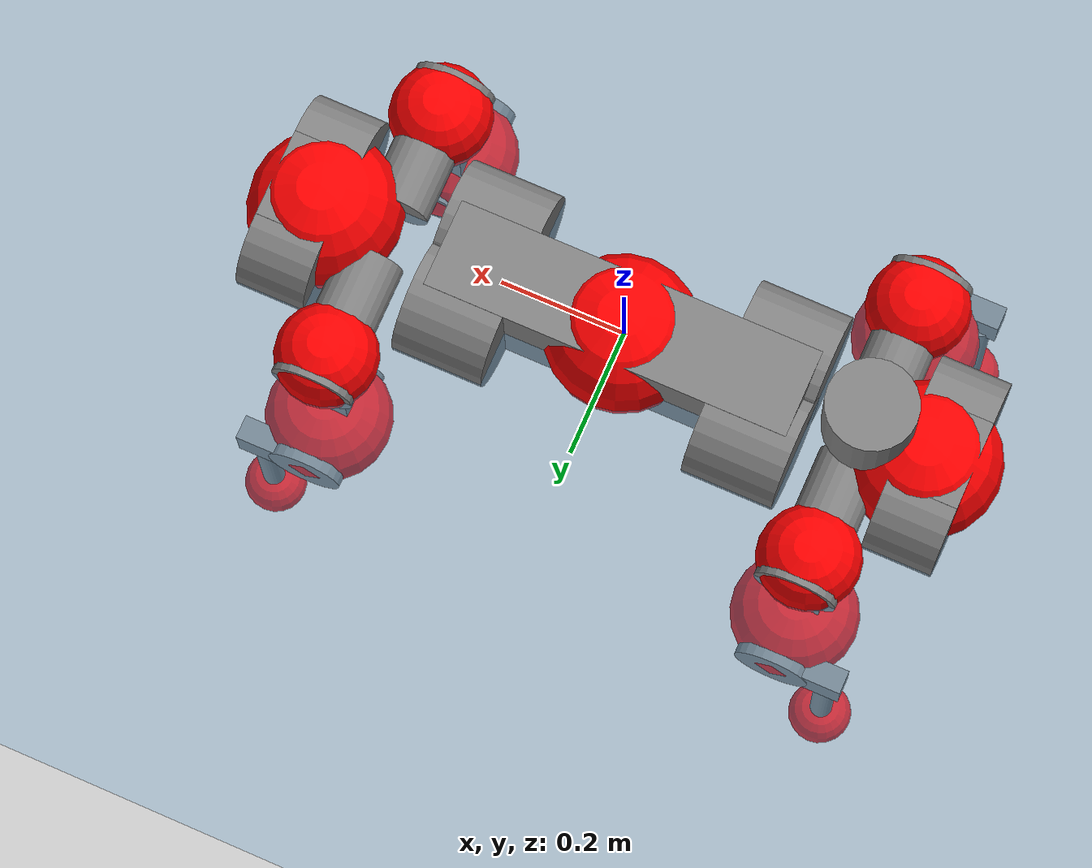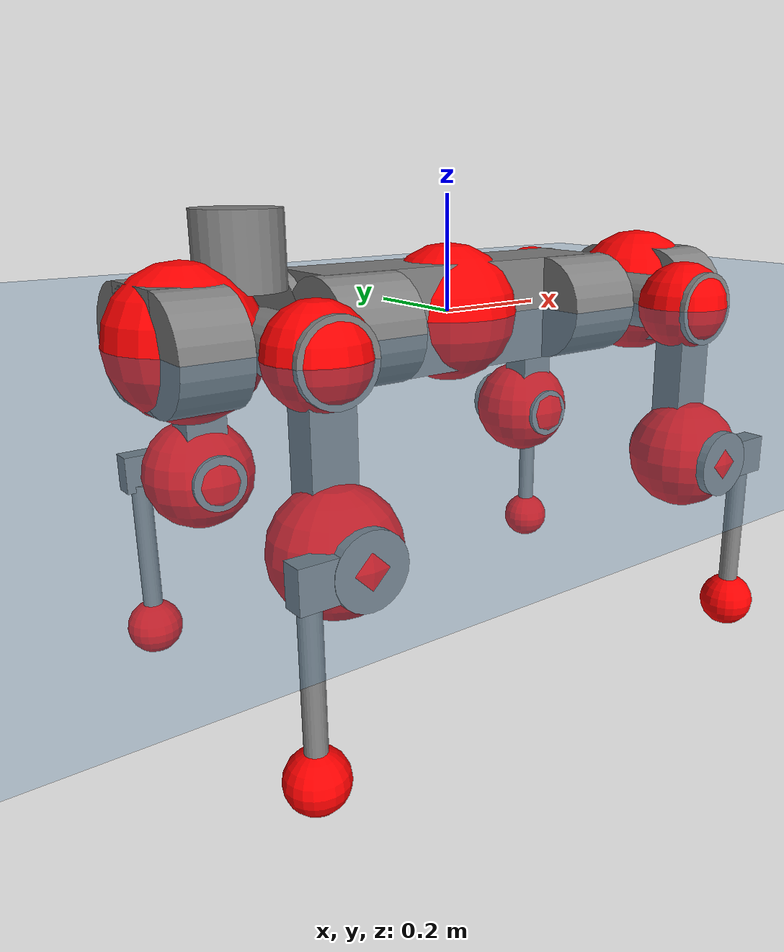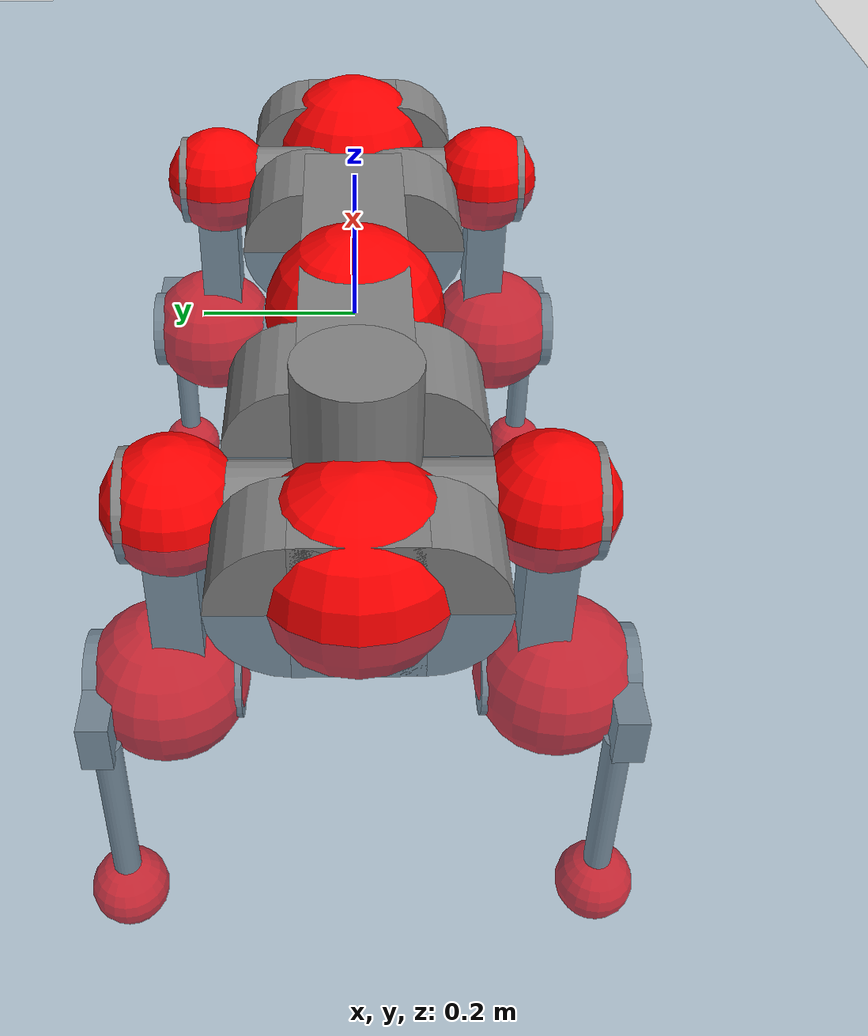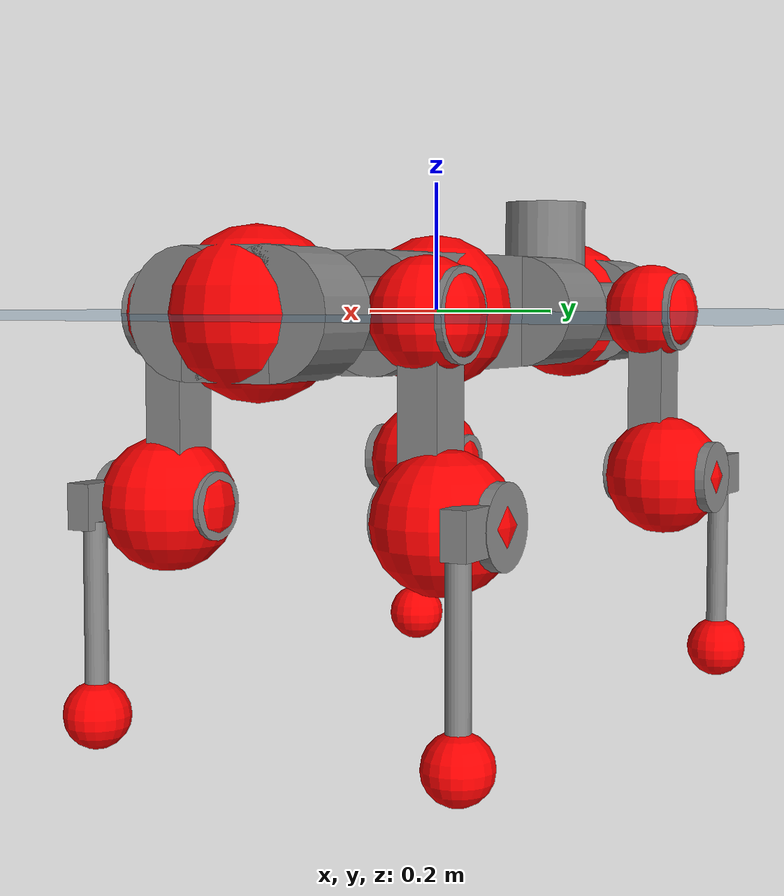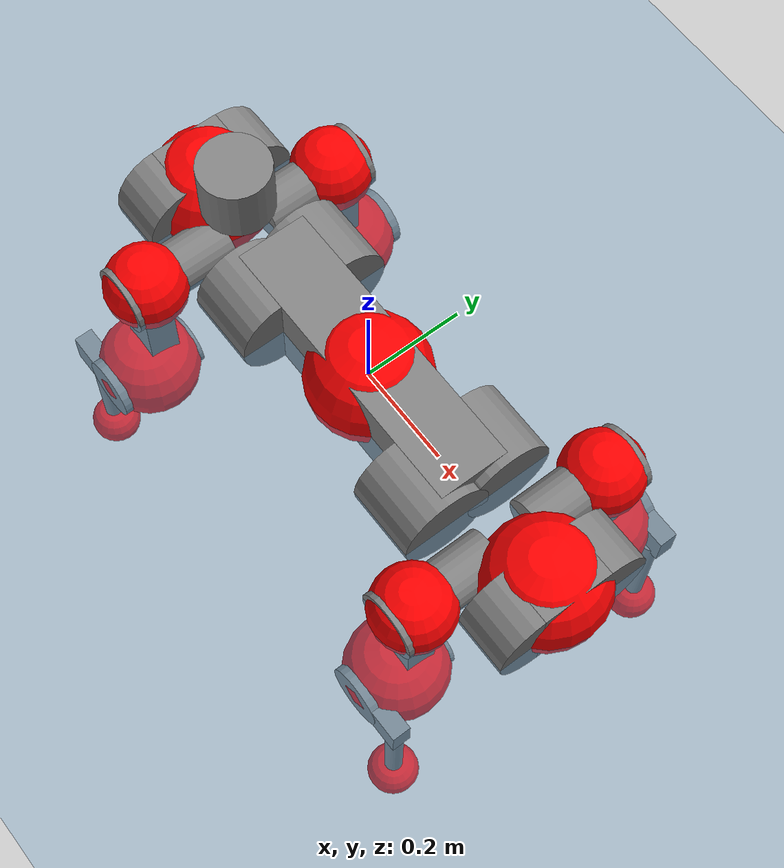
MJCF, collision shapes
<mujoco model="anymal_c">
  <compiler angle="radian" assetdir="assets" balanceinertia="true" inertiafromgeom="false"/>

  <option timestep="0.005" density="1.2" viscosity="2e-05"/>

  <size nkey="1"/>

  <visual>
    <quality shadowsize="8192"/>
    <map shadowclip="0.5"/>
  </visual>

  <default>
    <default class="/">
      <material specular="0" shininess="0.25"/>
      <geom contype="0" conaffinity="0" group="1" solref="-1000 -80"/>
      <site size="0.01 0.005 0.005" group="5"/>
      <general forcelimited="true" forcerange="-80 80" biastype="affine" gainprm="80" biasprm="0 -80 -2"/>
      <default class="anymal_c">
        <joint armature="0.01" damping="0.01" frictionloss="0.1"/>
        <default class="visual">
          <geom type="mesh" group="2"/>
          <default class="visual_zflip"/>
        </default>
        <default class="collision">
          <geom type="cylinder" group="3"/>
          <default class="foot">
            <geom size="0.03 0 0" type="sphere" condim="6" priority="1" friction="0.8 0.02 0.01" solimp="0.015 1 0.03"/>
          </default>
        </default>
      </default>
      <default class="reward_collision_sphere">
        <geom group="5" rgba="1 0 0 1"/>
      </default>
    </default>
  </default>

  <asset>
    <texture type="skybox" colorspace="auto" name="//unnamed_texture_0" builtin="gradient" rgb1="0.95 0.95 0.95" rgb2="0.95 0.95 0.95" width="100" height="600"/>
    <texture type="2d" colorspace="auto" name="texplane" builtin="checker" rgb1="0.345 0.575 0.748" rgb2="0.345 0.575 0.748" markrgb="1 1 1" width="512" height="512"/>
    <texture type="2d" colorspace="linear" name="base" file="base.png"/>
    <texture type="2d" colorspace="linear" name="top_shell" file="top_shell.png"/>
    <texture type="2d" colorspace="linear" name="bottom_shell" file="bottom_shell.png"/>
    <texture type="2d" colorspace="linear" name="remote" file="remote.png"/>
    <texture type="2d" colorspace="linear" name="hatch" file="hatch.png"/>
    <texture type="2d" colorspace="linear" name="handle" file="handle.png"/>
    <texture type="2d" colorspace="linear" name="face" file="face.png"/>
    <texture type="2d" colorspace="linear" name="battery" file="battery.png"/>
    <texture type="2d" colorspace="linear" name="lidar_cage" file="lidar_cage.png"/>
    <texture type="2d" colorspace="linear" name="depth_camera" file="depth_camera.png"/>
    <texture type="2d" colorspace="linear" name="wide_angle_camera" file="wide_angle_camera.png"/>
    <texture type="2d" colorspace="linear" name="lidar" file="lidar.png"/>
    <texture type="2d" colorspace="linear" name="drive" file="drive.png"/>
    <texture type="2d" colorspace="linear" name="hip_l" file="hip_l.png"/>
    <texture type="2d" colorspace="linear" name="shank_l" file="shank_l.png"/>
    <texture type="2d" colorspace="linear" name="foot" file="foot.png"/>
    <texture type="2d" colorspace="linear" name="thigh" file="thigh.png"/>
    <texture type="2d" colorspace="linear" name="shank_r" file="shank_r.png"/>
    <texture type="2d" colorspace="linear" name="hip_r" file="hip_r.png"/>
    <material name="MatPlane" class="/" texture="texplane" texuniform="true" texrepeat="2 2" specular="0.9" shininess="0.5"/>
    <material name="black_plastic" class="/" rgba="0.007 0.007 0.007 1"/>
    <material name="green" class="/" rgba="0.052 0.178 0.033 1"/>
    <material name="red" class="/" rgba="0.178 0.006 0.005 1"/>
    <material name="yellow" class="/" rgba="0.178 0.119 0.006 1"/>
    <material name="lwl" class="/" rgba="0.8 0.8 0.8 1"/>
    <material name="base" class="/" texture="base"/>
    <material name="top_shell" class="/" texture="top_shell"/>
    <material name="bottom_shell" class="/" texture="bottom_shell"/>
    <material name="hip_l" class="/" texture="hip_l"/>
    <material name="thigh" class="/" texture="thigh"/>
    <material name="shank_l" class="/" texture="shank_l"/>
    <material name="foot" class="/" texture="foot"/>
    <material name="hip_r" class="/" texture="hip_r"/>
    <material name="shank" class="/" texture="shank_r"/>
    <material name="hatch" class="/" texture="hatch"/>
    <material name="remote" class="/" texture="remote"/>
    <material name="handle" class="/" texture="handle"/>
    <material name="face" class="/" texture="face"/>
    <material name="depth_camera" class="/" texture="depth_camera"/>
    <material name="wide_angle_camera" class="/" texture="wide_angle_camera"/>
    <material name="battery" class="/" texture="battery"/>
    <material name="lidar_cage" class="/" texture="lidar_cage"/>
    <material name="lidar" class="/" texture="lidar"/>
    <material name="drive" class="/" texture="drive"/>
    <mesh name="base_0" class="/" file="base_0.obj"/>
    <mesh name="base_1" class="/" file="base_1.obj"/>
    <mesh name="base_2" class="/" file="base_2.obj"/>
    <mesh name="base_3" class="/" file="base_3.obj"/>
    <mesh name="base_4" class="/" file="base_4.obj"/>
    <mesh name="base_5" class="/" file="base_5.obj"/>
    <mesh name="top_shell" class="/" file="top_shell.obj"/>
    <mesh name="bottom_shell" class="/" file="bottom_shell.obj"/>
    <mesh name="remote" class="/" file="remote.obj"/>
    <mesh name="handle" class="/" file="handle.obj"/>
    <mesh name="face" class="/" file="face.obj"/>
    <mesh name="wide_angle_camera" class="/" file="wide_angle_camera.obj"/>
    <mesh name="depth_camera" class="/" file="depth_camera.obj"/>
    <mesh name="battery" class="/" file="battery.obj"/>
    <mesh name="lidar_cage" class="/" file="lidar_cage.obj"/>
    <mesh name="lidar" class="/" file="lidar.obj"/>
    <mesh name="drive" class="/" file="drive.obj"/>
    <mesh name="hip_l" class="/" file="hip_l.obj"/>
    <mesh name="thigh" class="/" file="thigh.obj"/>
    <mesh name="shank_l" class="/" file="shank_l.obj"/>
    <mesh name="foot" class="/" file="foot.obj"/>
    <mesh name="hip_r" class="/" file="hip_r.obj"/>
    <mesh name="hatch" class="/" file="hatch.obj"/>
    <mesh name="shank_r" class="/" file="shank_r.obj"/>
  </asset>

  <worldbody>
    <geom name="floor" class="/" size="100 100 0.125" type="plane" group="0" material="MatPlane"/>
    <light name="toplight_shadow" class="/" pos="0 0 5" dir="0.0990148 0.0990148 -0.990148" type="directional" ambient="0.04 0.04 0.04" diffuse="0.55 0.55 0.55" specular="0.12 0.12 0.12"/>
    <light name="toplight_fill" class="/" pos="0 0 5" dir="0.0990148 0.0990148 -0.990148" type="directional" castshadow="false" ambient="0.04 0.04 0.04" diffuse="0.3 0.3 0.3" specular="0.08 0.08 0.08"/>
    <body name="trunk" childclass="anymal_c" pos="0.0022507 0.000319646 -0.0014397" quat="0.999999 -0.00123646 -0.000234743 0.00037031">
      <inertial pos="9.92072e-05 0.000895177 0.048264" quat="0.495672 0.500367 0.501961 0.501973" mass="18.7767" diaginertia="0.944514 0.498091 0.187726"/>
      <joint name="//unnamed_joint_0" type="free" armature="0" damping="0" frictionloss="0"/>
      <geom name="//unnamed_geom_1" class="visual" material="green" mesh="base_0"/>
      <geom name="//unnamed_geom_2" class="visual" material="yellow" mesh="base_1"/>
      <geom name="//unnamed_geom_3" class="visual" material="red" mesh="base_2"/>
      <geom name="//unnamed_geom_4" class="visual" material="black_plastic" mesh="base_3"/>
      <geom name="//unnamed_geom_5" class="visual" material="lwl" mesh="base_4"/>
      <geom name="//unnamed_geom_6" class="visual" material="base" mesh="base_5"/>
      <geom name="trunk_1" class="collision" size="0.29128 0.0703091 0.0903974" type="box"/>
      <geom name="trunk_2" class="collision" size="0.0903974 0.0728201" pos="0.235589 0.0670666 0" quat="0.707107 0 0.707107 0"/>
      <geom name="trunk_3" class="collision" size="0.0903974 0.0728201" pos="-0.235589 0.0670666 0" quat="0.707107 0 0.707107 0"/>
      <geom name="trunk_4" class="collision" size="0.0903974 0.0728201" pos="0.235589 -0.0670666 0" quat="0.707107 0 0.707107 0"/>
      <geom name="trunk_5" class="collision" size="0.0903974 0.0728201" pos="-0.235589 -0.0670666 0" quat="0.707107 0 0.707107 0"/>
      <geom name="//unnamed_geom_12" class="visual" material="top_shell" mesh="top_shell"/>
      <geom name="//unnamed_geom_13" class="visual" material="bottom_shell" mesh="bottom_shell"/>
      <geom name="//unnamed_geom_14" class="visual" material="remote" mesh="remote"/>
      <geom name="//unnamed_geom_15" class="visual" material="handle" mesh="handle"/>
      <geom name="//unnamed_geom_16" class="visual" pos="0.448973 0 0" quat="1 0 0 0" material="face" mesh="face"/>
      <geom name="trunk_6" class="collision" size="0.0552428 0.0703091 0.0903974" pos="0.508547 0 0" type="box"/>
      <geom name="//unnamed_geom_18" class="collision" size="0.0903974 0.0552428" pos="0.508547 0.0670666 0" quat="0.707107 0 0.707107 0"/>
      <geom name="//unnamed_geom_19" class="collision" size="0.0903974 0.0552428" pos="0.508547 -0.0670666 0" quat="0.707107 0 0.707107 0"/>
      <geom name="//unnamed_geom_20" class="visual" pos="0.500039 0 -0.027537" quat="0.965926 0 0.258819 0" material="depth_camera" mesh="depth_camera"/>
      <geom name="//unnamed_geom_21" class="visual" pos="0.555665 0 0.0145506" material="wide_angle_camera" mesh="wide_angle_camera"/>
      <geom name="//unnamed_geom_22" class="visual_zflip" pos="-0.448973 0 0" quat="0 0 0 1" material="face" mesh="face"/>
      <geom name="trunk_7" class="collision" size="0.0552428 0.0703091 0.0903974" pos="-0.508547 0 0" quat="0 0 0 1" type="box"/>
      <geom name="//unnamed_geom_24" class="collision" size="0.0903974 0.0552428" pos="-0.508547 -0.0670666 0" quat="0 -0.707107 0 0.707107"/>
      <geom name="//unnamed_geom_25" class="collision" size="0.0903974 0.0552428" pos="-0.508547 0.0670666 0" quat="0 -0.707107 0 0.707107"/>
      <geom name="//unnamed_geom_26" class="visual" pos="-0.500039 0 -0.027537" quat="0 -0.258819 0 0.965926" material="depth_camera" mesh="depth_camera"/>
      <geom name="//unnamed_geom_27" class="visual_zflip" pos="-0.555665 0 0.0145506" quat="0 0 0 1" material="wide_angle_camera" mesh="wide_angle_camera"/>
      <geom name="//unnamed_geom_28" class="visual" material="battery" mesh="battery"/>
      <geom name="//unnamed_geom_29" class="visual" pos="0 0.0716101 0.0290811" quat="0.683013 -0.183013 0.183013 0.683013" material="depth_camera" mesh="depth_camera"/>
      <geom name="//unnamed_geom_30" class="visual" pos="0 -0.0716101 0.0290811" quat="0.683013 0.183013 0.183013 -0.683013" material="depth_camera" mesh="depth_camera"/>
      <geom name="//unnamed_geom_31" class="visual" pos="-0.394273 0 0.0714409" quat="1 0 0 0" material="lidar_cage" mesh="lidar_cage"/>
      <geom name="trunk_8" class="collision" size="0.0703091 0.0602649" pos="-0.394273 0 0.12976"/>
      <geom name="//unnamed_geom_33" class="visual" pos="-0.394273 -4.91375e-05 0.138216" quat="0.707107 0 0 -0.707107" material="lidar" mesh="lidar"/>
      <geom name="//unnamed_geom_34" class="visual" pos="0.324842 0.0996468 -2.39599e-10" quat="0.258819 0.965926 0 0" material="drive" mesh="drive"/>
      <geom name="//unnamed_geom_35" class="visual" pos="0.324842 -0.0996468 2.39599e-10" quat="0.258819 -0.965926 0 0" material="drive" mesh="drive"/>
      <geom name="//unnamed_geom_36" class="visual" pos="-0.324842 0.0996468 2.39599e-10" quat="0 0 0.965926 -0.258819" material="drive" mesh="drive"/>
      <geom name="//unnamed_geom_37" class="visual" pos="-0.324842 -0.0996468 -2.39599e-10" quat="0 0 -0.965926 -0.258819" material="drive" mesh="drive"/>
      <geom name="//unnamed_geom_38" class="visual" pos="0.125647 0 0.0709549" quat="1 0 0 0" material="hatch" mesh="hatch"/>
      <geom name="//unnamed_geom_39" class="reward_collision_sphere" size="0.12053"/>
      <geom name="//unnamed_geom_40" class="reward_collision_sphere" size="0.12053" pos="0.487425 0 0"/>
      <geom name="//unnamed_geom_41" class="reward_collision_sphere" size="0.12053" pos="-0.487425 0 0"/>
      <site name="imu" pos="0.272101 0.0176322 0.058467" size="0.0100442"/>
      <camera name="track" pos="0 -1.91619 0" quat="0.707107 0.707107 0 0" mode="trackcom"/>
      <camera name="ego_camera" pos="0.487425 0 -0.0388794" quat="-0.5 -0.5 0.5 0.5"/>
      <body name="LF_HIP" pos="0.325109 0.100854 0.000440678" quat="0.258941 0.965893 0.000583274 2.41263e-05">
        <inertial pos="0.0606626 -0.0169531 -0.00680301" quat="-0.12444 0.709208 -0.135336 0.680605" mass="2.73756" diaginertia="0.00887977 0.00401489 0.00285814"/>
        <joint name="LF_HAA" pos="0 0 0" axis="0.999912 -0.00217235 0.0130929" range="-0.671275 0.509185" armature="0.0099051" damping="0.0184528" frictionloss="0.098771"/>
        <geom name="//unnamed_geom_42" class="visual" pos="0 -1.40945e-05 2.31502e-06" quat="0.258819 -0.965926 0 0" material="hip_l" mesh="hip_l"/>
        <geom name="//unnamed_geom_43" class="visual" pos="0.0648817 -0.0769762 -0.0445449" quat="0.183013 -0.683013 0.683013 0.183013" material="drive" mesh="drive"/>
        <geom name="//unnamed_geom_44" class="collision" size="0.0502208 0.0703091" pos="0.0648817 -0.0114586 -0.00671155" quat="-0.353553 -0.612372 0.612372 -0.353553"/>
        <body name="LF_THIGH" pos="0.0670082 -0.0694585 -0.0384886" quat="0.183451 -0.682 0.683829 0.183302">
          <inertial pos="0.036308 -0.00229009 -0.241459" quat="0.99317 -0.00520458 -0.0808019 0.084002" mass="3.01396" diaginertia="0.0444471 0.0232127 0.00360069"/>
          <joint name="LF_HFE" pos="0 0 0" axis="1 -0.000424584 0.000434465" range="-3.12483 3.14422" armature="0.00966318" damping="0.0140836" frictionloss="0.0988182"/>
          <geom name="//unnamed_geom_45" class="visual" pos="0.00248845 3.92121e-06 0" quat="0.707107 0 0 -0.707107" material="thigh" mesh="thigh"/>
          <geom name="//unnamed_geom_46" class="collision" size="0.065287 0.0401766" pos="0.0433267 0 0" quat="0.5 0.5 -0.5 -0.5"/>
          <geom name="//unnamed_geom_47" class="collision" size="0.0376656 0.0301325 0.141938" pos="0.032495 0 -0.137355" quat="0.707107 0 0 -0.707107" type="box"/>
          <geom name="//unnamed_geom_48" class="visual" pos="0.108642 0 -0.277016" quat="1 0 0 0" material="drive" mesh="drive"/>
          <geom name="//unnamed_geom_49" class="collision" size="0.0502208 0.0703091" pos="0.03282 0 -0.277016" quat="0.707107 0 0.707107 0"/>
          <geom name="//unnamed_geom_50" class="reward_collision_sphere" size="0.0803532" pos="0.0270792 0 0"/>
          <body name="LF_SHANK" pos="0.107793 -0.00304888 -0.276932" quat="0.999999 0.000808063 -0.000264056 -0.000930097">
            <inertial pos="0.00312965 -0.0587541 -0.0759187" quat="0.992773 -0.117428 -0.00428939 -0.0243868" mass="0.595196" diaginertia="0.0151348 0.00788573 0.000995282"/>
            <joint name="LF_KFE" pos="0 0 0" axis="0.999994 -0.00357479 -0.000364397" range="-3.19344 3.13886" armature="0.0108479" damping="0" frictionloss="0.109427"/>
            <geom name="//unnamed_geom_51" class="visual" pos="0.000811428 0.00432658 0" quat="0.707107 0 0 -0.707107" material="shank_l" mesh="shank_l"/>
            <geom name="LF_kfe_act" class="collision" size="0.0602649 0.0200883" pos="0.0216633 0 0" quat="0.5 0.5 -0.5 -0.5"/>
            <geom name="//unnamed_geom_53" class="collision" size="0.0577529 0.033899 0.0190839" pos="0.0216633 -0.0550895 0" quat="0.5 0.5 -0.5 -0.5" type="box"/>
            <geom name="//unnamed_geom_54" class="visual" pos="0.0141351 -0.0828701 -0.328502" quat="0.382683 0 0 -0.92388" material="foot" mesh="foot"/>
            <geom name="LF_calf" class="collision" size="0.0175773 0.141876" pos="0.0141353 -0.0842644 -0.164251" quat="0.707107 0 0 -0.707107"/>
            <geom name="LF_foot" class="foot" size="0.0317193" pos="0.0141353 -0.0842644 -0.306632" quat="0.707107 0 0 -0.707107"/>
            <geom name="//unnamed_geom_57" class="reward_collision_sphere" size="0.100442" pos="-0.0541583 0 0"/>
            <geom name="//unnamed_geom_58" class="reward_collision_sphere" size="0.0502208" pos="0.0141353 -0.0842644 -0.306632"/>
            <site name="LF_foot" class="foot" pos="0.0141353 -0.0842644 -0.306632" quat="0.707107 0 0 -0.707107" size="0.0100442"/>
          </body>
        </body>
      </body>
      <body name="RF_HIP" pos="0.324175 -0.0994748 -0.00241396" quat="0.25945 -0.965755 -0.000501164 -0.00131322">
        <inertial pos="0.0633244 0.0123527 -0.00782139" quat="0.147954 0.678593 0.122443 0.708963" mass="2.78773" diaginertia="0.00822455 0.00387379 0.00269794"/>
        <joint name="RF_HAA" pos="0 0 0" axis="0.999975 -0.00625706 -0.00321602" range="-0.489425 0.725278" armature="0.00997127" damping="0.00831721" frictionloss="0.0864645"/>
        <geom name="//unnamed_geom_59" class="visual" pos="0 1.40944e-05 2.31501e-06" quat="0.258819 0.965926 0 0" material="hip_r" mesh="hip_r"/>
        <geom name="//unnamed_geom_60" class="visual" pos="0.0648817 0.0769762 -0.0445449" quat="0.183013 0.683013 0.683013 -0.183013" material="drive" mesh="drive"/>
        <geom name="//unnamed_geom_61" class="collision" size="0.0502208 0.0703091" pos="0.0648817 0.0114586 -0.00671155" quat="-0.353553 0.612372 0.612372 0.353553"/>
        <body name="RF_THIGH" pos="0.0649457 0.066947 -0.0399493" quat="0.182899 0.683109 0.682858 -0.183345">
          <inertial pos="0.0355198 -0.00279336 -0.237842" quat="0.992272 -0.0167815 -0.0839785 0.0897861" mass="3.13955" diaginertia="0.0445852 0.0236289 0.00368389"/>
          <joint name="RF_HFE" pos="0 0 0" axis="0.999999 0.00154097 0.00013688" range="-3.12053 3.19553" armature="0.00996486" damping="0.0144422" frictionloss="0.106462"/>
          <geom name="//unnamed_geom_62" class="visual" pos="0.00248845 3.92121e-06 0" quat="0.707107 0 0 -0.707107" material="thigh" mesh="thigh"/>
          <geom name="//unnamed_geom_63" class="collision" size="0.065287 0.0401766" pos="0.0433267 0 0" quat="0.5 0.5 0.5 0.5"/>
          <geom name="//unnamed_geom_64" class="collision" size="0.0376656 0.0301325 0.141938" pos="0.032495 0 -0.137355" quat="0.707107 0 0 0.707107" type="box"/>
          <geom name="//unnamed_geom_65" class="visual" pos="0.108642 0 -0.277016" quat="1 0 0 0" material="drive" mesh="drive"/>
          <geom name="//unnamed_geom_66" class="collision" size="0.0502208 0.0703091" pos="0.03282 0 -0.277016" quat="0.707107 0 0.707107 0"/>
          <geom name="//unnamed_geom_67" class="reward_collision_sphere" size="0.0803532" pos="0.0270792 0 0"/>
          <body name="RF_SHANK" pos="0.108174 -0.00258154 -0.277503" quat="1 -6.34667e-05 -8.50484e-05 4.84522e-05">
            <inertial pos="0.00609544 0.0585613 -0.0777105" quat="0.991722 0.126876 -0.00561174 0.0189205" mass="0.596174" diaginertia="0.0151707 0.00747388 0.000940792"/>
            <joint name="RF_KFE" pos="0 0 0" axis="0.999964 0.00584412 0.00607936" range="-3.15391 3.18852" armature="0.00995154" damping="0.0232417" frictionloss="0.0961741"/>
            <geom name="//unnamed_geom_68" class="visual" pos="0.000811424 -0.00432657 0" quat="0.707107 0 0 0.707107" material="shank" mesh="shank_r"/>
            <geom name="RF_kfe_act" class="collision" size="0.0602649 0.0200883" pos="0.0216633 0 0" quat="0.5 0.5 0.5 0.5"/>
            <geom name="//unnamed_geom_70" class="collision" size="0.0577529 0.033899 0.0190839" pos="0.0216633 0.0550895 0" quat="0.5 0.5 0.5 0.5" type="box"/>
            <geom name="//unnamed_geom_71" class="visual" pos="0.0141355 0.0828701 -0.328502" quat="0.382683 0 0 0.92388" material="foot" mesh="foot"/>
            <geom name="RF_calf" class="collision" size="0.0175773 0.141876" pos="0.0141353 0.0842644 -0.164251" quat="0.707107 0 0 0.707107"/>
            <geom name="RF_foot" class="foot" size="0.026361" pos="0.0141353 0.0842644 -0.306632" quat="0.707107 0 0 0.707107"/>
            <geom name="//unnamed_geom_74" class="reward_collision_sphere" size="0.100442" pos="-0.0541583 0 0"/>
            <geom name="//unnamed_geom_75" class="reward_collision_sphere" size="0.0502208" pos="0.0141353 0.0842644 -0.306632"/>
            <site name="RF_foot" class="foot" pos="0.0141353 0.0842644 -0.306632" quat="0.707107 0 0 0.707107" size="0.0100442"/>
          </body>
        </body>
      </body>
      <body name="LH_HIP" pos="-0.3246 0.100029 -0.00149497" quat="-0.000206888 -8.79302e-05 0.965924 -0.258826">
        <inertial pos="0.0621867 0.0169522 -0.0108515" quat="0.130763 0.673207 0.133428 0.715465" mass="2.87564" diaginertia="0.00857132 0.00390268 0.00291734"/>
        <joint name="LH_HAA" pos="0 0 0" axis="1 -0.000352511 0.000881448" stiffness="0.00253156" range="-0.47203 0.68129" armature="0.00873685" damping="0.0110227" frictionloss="0.114188"/>
        <geom name="//unnamed_geom_76" class="visual" pos="0 1.40944e-05 2.31501e-06" quat="-0.258819 -0.965926 0 0" material="hip_r" mesh="hip_r"/>
        <geom name="//unnamed_geom_77" class="visual" pos="0.0648817 0.0769762 -0.0445449" quat="0.183013 0.683013 0.683013 -0.183013" material="drive" mesh="drive"/>
        <geom name="//unnamed_geom_78" class="collision" size="0.0502208 0.0703091" pos="0.0648817 0.0114586 -0.00671155" quat="-0.353553 0.612372 0.612372 0.353553"/>
        <body name="LH_THIGH" pos="0.0647675 0.066537 -0.0389668" quat="0.183415 0.683013 0.682916 -0.18297">
          <inertial pos="0.0336682 6.77539e-05 -0.23964" quat="0.992665 -0.0033348 -0.0815381 0.0892053" mass="3.19139" diaginertia="0.0449701 0.0236835 0.00372132"/>
          <joint name="LH_HFE" pos="0 0 0" axis="0.999958 0.00268325 -0.00881782" stiffness="0.0085664" range="-3.14185 3.13194" armature="0.0113503" damping="0" frictionloss="0.100034"/>
          <geom name="//unnamed_geom_79" class="visual" pos="0.00248845 3.92121e-06 0" quat="0.707107 0 0 -0.707107" material="thigh" mesh="thigh"/>
          <geom name="//unnamed_geom_80" class="collision" size="0.065287 0.0401766" pos="0.0433267 0 0" quat="0.5 0.5 -0.5 -0.5"/>
          <geom name="//unnamed_geom_81" class="collision" size="0.0376656 0.0301325 0.141938" pos="0.032495 0 -0.137355" quat="0.707107 0 0 -0.707107" type="box"/>
          <geom name="//unnamed_geom_82" class="visual" pos="0.108642 0 -0.277016" quat="1 0 0 0" material="drive" mesh="drive"/>
          <geom name="//unnamed_geom_83" class="collision" size="0.0502208 0.0703091" pos="0.03282 0 -0.277016" quat="0.707107 0 0.707107 0"/>
          <geom name="//unnamed_geom_84" class="reward_collision_sphere" size="0.0803532" pos="0.0270792 0 0"/>
          <body name="LH_SHANK" pos="0.108884 -0.000229856 -0.279302" quat="1 -0.000518199 -0.000176654 4.0702e-05">
            <inertial pos="0.00557483 0.0609519 -0.0786682" quat="0.992333 0.120267 0.00657563 0.0276963" mass="0.597018" diaginertia="0.0148241 0.00747069 0.000944961"/>
            <joint name="LH_KFE" pos="0 0 0" axis="0.999941 -0.00666304 0.00858461" range="-3.13936 3.16442" armature="0.0109956" damping="0" frictionloss="0.112817"/>
            <geom name="//unnamed_geom_85" class="visual" pos="0.000811424 -0.00432657 0" quat="-0.707107 0 0 -0.707107" material="shank" mesh="shank_r"/>
            <geom name="LH_kfe_act" class="collision" size="0.0602649 0.0200883" pos="0.0216633 0 0" quat="0.5 0.5 -0.5 -0.5"/>
            <geom name="//unnamed_geom_87" class="collision" size="0.0577529 0.033899 0.0190839" pos="0.0216633 0.0550895 0" quat="0.5 0.5 -0.5 -0.5" type="box"/>
            <geom name="//unnamed_geom_88" class="visual" pos="0.0141355 0.0828701 -0.328502" quat="-0.382683 0 0 -0.92388" material="foot" mesh="foot"/>
            <geom name="LH_calf" class="collision" size="0.0175773 0.141876" pos="0.0141353 0.0842644 -0.164251" quat="0.707107 0 0 -0.707107"/>
            <geom name="LH_foot" class="foot" size="0.0308141" pos="0.0141353 0.0842644 -0.306632" quat="0.707107 0 0 -0.707107"/>
            <geom name="//unnamed_geom_91" class="reward_collision_sphere" size="0.100442" pos="-0.0541583 0 0"/>
            <geom name="//unnamed_geom_92" class="reward_collision_sphere" size="0.0502208" pos="0.0141353 0.0842644 -0.306632"/>
            <site name="LH_foot" class="foot" pos="0.0141353 0.0842644 -0.306632" quat="0.707107 0 0 -0.707107" size="0.0100442"/>
          </body>
        </body>
      </body>
      <body name="RH_HIP" pos="-0.324689 -0.101812 -0.00106013" quat="0.000831153 -0.000225397 -0.965695 -0.259678">
        <inertial pos="0.0638174 -0.0120844 -0.0107297" quat="-0.126571 0.712215 -0.146994 0.674627" mass="2.8124" diaginertia="0.00863658 0.00393516 0.00286422"/>
        <joint name="RH_HAA" pos="0 0 0" axis="0.999922 -0.00544893 0.0112048" stiffness="0.00374299" range="-0.717327 0.470833" armature="0.00924663" damping="0.015272" frictionloss="0.095375"/>
        <geom name="//unnamed_geom_93" class="visual" pos="0 -1.40945e-05 2.31502e-06" quat="-0.258819 0.965926 0 0" material="hip_l" mesh="hip_l"/>
        <geom name="//unnamed_geom_94" class="visual" pos="0.0648817 -0.0769762 -0.0445449" quat="-0.183013 0.683013 -0.683013 -0.183013" material="drive" mesh="drive"/>
        <geom name="//unnamed_geom_95" class="collision" size="0.0502208 0.0703091" pos="0.0648817 -0.0114586 -0.00671155" quat="0.353553 0.612372 -0.612372 0.353553"/>
        <body name="RH_THIGH" pos="0.0653508 -0.0719277 -0.0434107" quat="-0.183078 0.68302 -0.683007 -0.182944">
          <inertial pos="0.0344992 -0.000111221 -0.23849" quat="0.993105 -0.00691604 -0.0817011 0.0837799" mass="2.99941" diaginertia="0.0456444 0.0248369 0.00361269"/>
          <joint name="RH_HFE" pos="0 0 0" axis="0.999998 0.00113362 0.00167576" stiffness="0.000444444" range="-3.13722 3.20011" armature="0.0104112" damping="0.00932662" frictionloss="0.0954785"/>
          <geom name="//unnamed_geom_96" class="visual" pos="0.00248845 3.92121e-06 0" quat="0.707107 0 0 -0.707107" material="thigh" mesh="thigh"/>
          <geom name="//unnamed_geom_97" class="collision" size="0.065287 0.0401766" pos="0.0433267 0 0" quat="0.5 0.5 0.5 0.5"/>
          <geom name="//unnamed_geom_98" class="collision" size="0.0376656 0.0301325 0.141938" pos="0.032495 0 -0.137355" quat="0.707107 0 0 0.707107" type="box"/>
          <geom name="//unnamed_geom_99" class="visual" pos="0.108642 0 -0.277016" quat="1 0 0 0" material="drive" mesh="drive"/>
          <geom name="//unnamed_geom_100" class="collision" size="0.0502208 0.0703091" pos="0.03282 0 -0.277016" quat="0.707107 0 0.707107 0"/>
          <geom name="//unnamed_geom_101" class="reward_collision_sphere" size="0.0803532" pos="0.0270792 0 0"/>
          <body name="RH_SHANK" pos="0.109642 -0.000735867 -0.274319" quat="1 0.000178627 -0.000121771 7.66318e-05">
            <inertial pos="0.0033719 -0.0596761 -0.0789266" quat="0.992645 -0.119651 0.00367843 -0.0180491" mass="0.60131" diaginertia="0.0153343 0.00753731 0.00100893"/>
            <joint name="RH_KFE" pos="0 0 0" axis="0.999889 -0.0118357 0.00904489" range="-3.12089 3.12856" armature="0.0102337" damping="0.0219868" frictionloss="0.102608"/>
            <geom name="//unnamed_geom_102" class="visual" pos="0.000811428 0.00432658 0" quat="0.707107 0 0 -0.707107" material="shank_l" mesh="shank_l"/>
            <geom name="RH_kfe_act" class="collision" size="0.0602649 0.0200883" pos="0.0216633 0 0" quat="0.5 0.5 0.5 0.5"/>
            <geom name="//unnamed_geom_104" class="collision" size="0.0577529 0.033899 0.0190839" pos="0.0216633 -0.0550895 0" quat="0.5 0.5 0.5 0.5" type="box"/>
            <geom name="//unnamed_geom_105" class="visual" pos="0.0141351 -0.0828701 -0.328502" quat="0.382683 0 0 -0.92388" material="foot" mesh="foot"/>
            <geom name="RH_calf" class="collision" size="0.0175773 0.141876" pos="0.0141353 -0.0842644 -0.164251" quat="0.707107 0 0 0.707107"/>
            <geom name="RH_foot" class="foot" size="0.0274503" pos="0.0141353 -0.0842644 -0.306632" quat="0.707107 0 0 0.707107"/>
            <geom name="//unnamed_geom_108" class="reward_collision_sphere" size="0.100442" pos="-0.0541583 0 0"/>
            <geom name="//unnamed_geom_109" class="reward_collision_sphere" size="0.0502208" pos="0.0141353 -0.0842644 -0.306632"/>
            <site name="RH_foot" class="foot" pos="0.0141353 -0.0842644 -0.306632" quat="0.707107 0 0 0.707107" size="0.0100442"/>
          </body>
        </body>
      </body>
    </body>
  </worldbody>

  <contact>
    <pair class="/" geom1="floor" geom2="LF_foot" name="//unnamed_contact_0"/>
    <pair class="/" geom1="floor" geom2="RF_foot" name="//unnamed_contact_1"/>
    <pair class="/" geom1="floor" geom2="LH_foot" name="//unnamed_contact_2"/>
    <pair class="/" geom1="floor" geom2="RH_foot" name="//unnamed_contact_3"/>
  </contact>

  <actuator>
    <general name="LF_HAA" class="/" joint="LF_HAA" forcerange="-81.5032 81.5032" gainprm="82.9678" biasprm="0 -82.9678 -1.9724"/>
    <general name="LF_HFE" class="/" joint="LF_HFE" forcerange="-74.8999 74.8999" gainprm="82.9678" biasprm="0 -82.9678 -1.9724"/>
    <general name="LF_KFE" class="/" joint="LF_KFE" forcerange="-82.3187 82.3187" gainprm="82.9678" biasprm="0 -82.9678 -1.9724"/>
    <general name="RF_HAA" class="/" joint="RF_HAA" forcerange="-79.621 79.621" gainprm="82.9678" biasprm="0 -82.9678 -1.9724"/>
    <general name="RF_HFE" class="/" joint="RF_HFE" forcerange="-88.5869 88.5869" gainprm="82.9678" biasprm="0 -82.9678 -1.9724"/>
    <general name="RF_KFE" class="/" joint="RF_KFE" forcerange="-81.2497 81.2497" gainprm="82.9678" biasprm="0 -82.9678 -1.9724"/>
    <general name="LH_HAA" class="/" joint="LH_HAA" forcerange="-88.2402 88.2402" gainprm="82.9678" biasprm="0 -82.9678 -1.9724"/>
    <general name="LH_HFE" class="/" joint="LH_HFE" forcerange="-76.8181 76.8181" gainprm="82.9678" biasprm="0 -82.9678 -1.9724"/>
    <general name="LH_KFE" class="/" joint="LH_KFE" forcerange="-73.2265 73.2265" gainprm="82.9678" biasprm="0 -82.9678 -1.9724"/>
    <general name="RH_HAA" class="/" joint="RH_HAA" forcerange="-73.8774 73.8774" gainprm="82.9678" biasprm="0 -82.9678 -1.9724"/>
    <general name="RH_HFE" class="/" joint="RH_HFE" forcerange="-88.6239 88.6239" gainprm="82.9678" biasprm="0 -82.9678 -1.9724"/>
    <general name="RH_KFE" class="/" joint="RH_KFE" forcerange="-77.5158 77.5158" gainprm="82.9678" biasprm="0 -82.9678 -1.9724"/>
  </actuator>

  <sensor>
    <gyro site="imu" name="imu_angular_velocity"/>
    <velocimeter site="imu" name="imu_linear_velocity"/>
    <framelinvel objtype="site" objname="LF_foot" name="LF_foot_global_linear_velocity"/>
    <framelinvel objtype="site" objname="RF_foot" name="RF_foot_global_linear_velocity"/>
    <framelinvel objtype="site" objname="LH_foot" name="LH_foot_global_linear_velocity"/>
    <framelinvel objtype="site" objname="RH_foot" name="RH_foot_global_linear_velocity"/>
  </sensor>

  <keyframe>
    <key name="home" qpos="0 0 0.55 1 0 0 0 0 0.4 -0.8 0 -0.4 0.8 0 -0.4 0.8 0 0.4 -0.8"/>
  </keyframe>
</mujoco>
